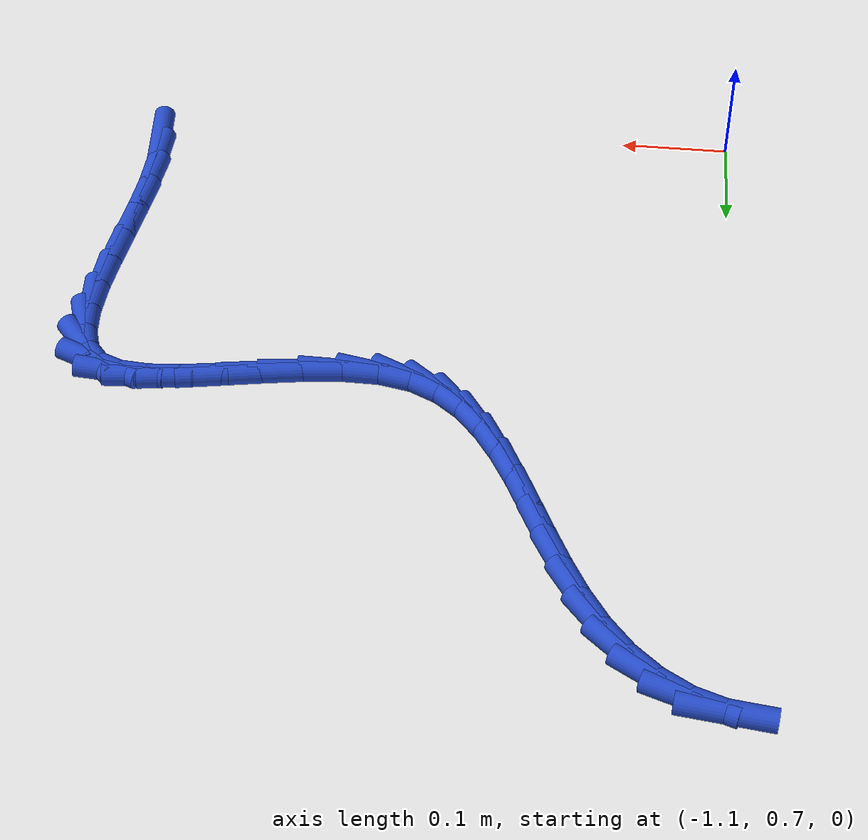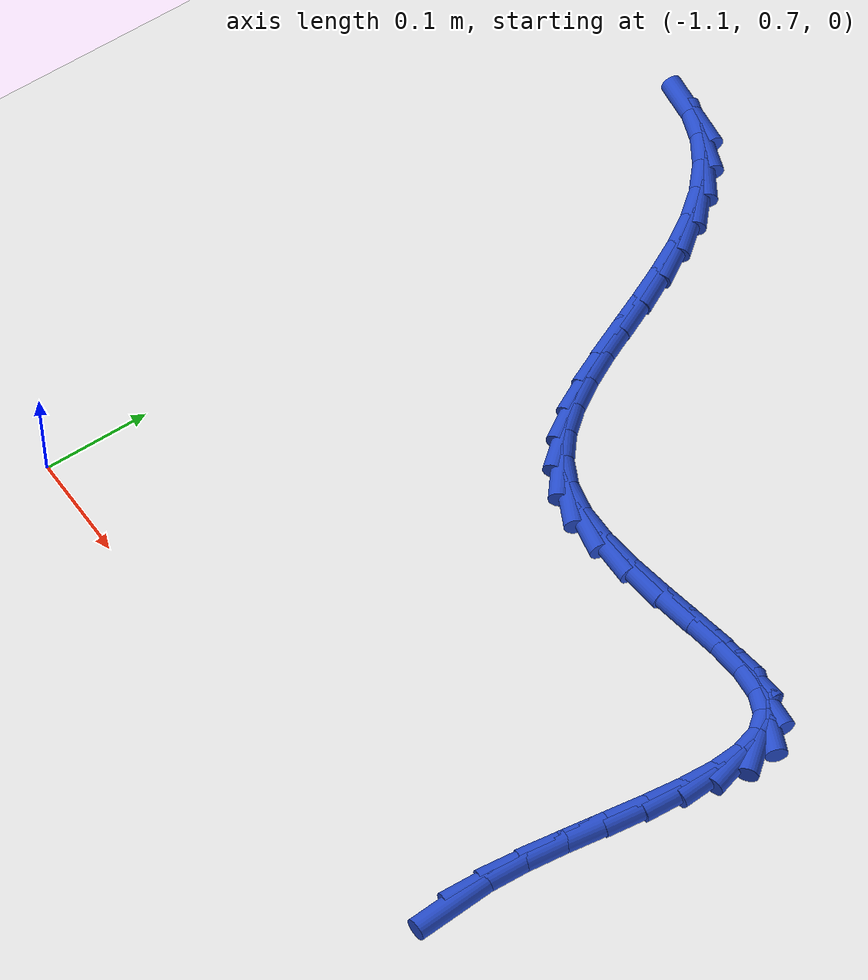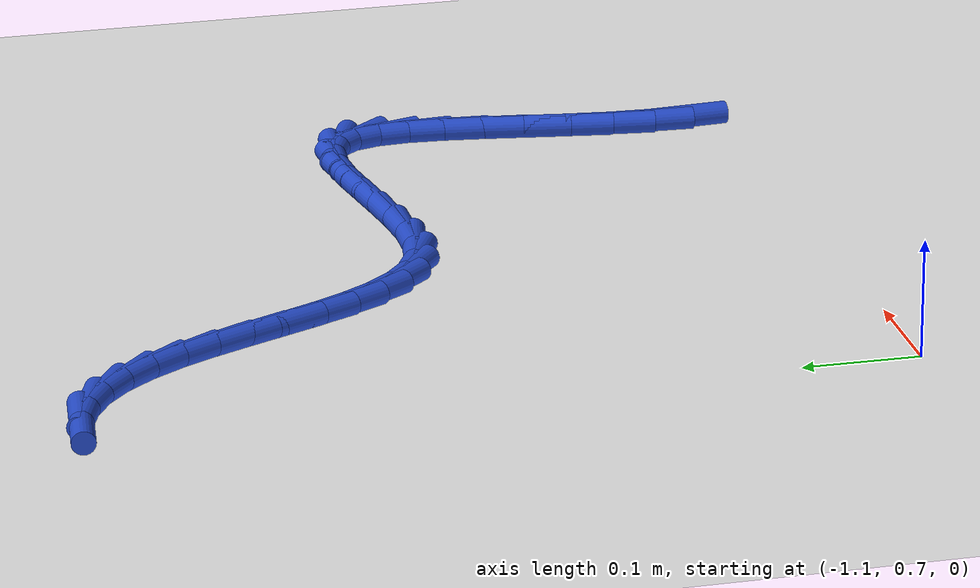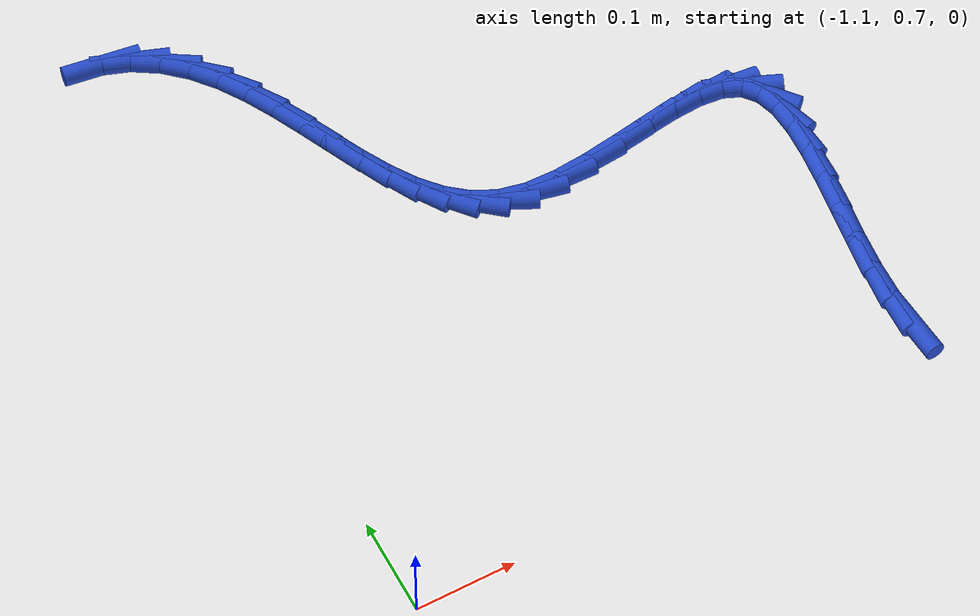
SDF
<sdf version="1.6">
 <world name="default">
  <model name="ground_plane">
   <static>1</static>
   <link name="link">
    <collision name="collision">
     <geometry><plane><normal>0 0 1</normal><size>100 100</size></plane></geometry>
     <surface><friction><ode><mu>100</mu><mu2>50</mu2></ode></friction></surface>
    </collision>
    <visual name="visual">
     <cast_shadows>0</cast_shadows>
     <geometry><plane><normal>0 0 1</normal><size>100 100</size></plane></geometry>
     <material>
      <script><uri>file://media/materials/scripts/gazebo.material</uri><name>Gazebo/WhiteGlow</name></script>
     </material>
    </visual>
   </link>
  </model>
  <model name="line">
   <link name="link_33">
    <pose>-0.5493071312710457 0.7454658477451037 0.01 0 1.57 -1.5068990331410062</pose>
    <collision name="collision">
     <geometry><cylinder><radius>0.01</radius><length>0.08</length></cylinder></geometry>
    </collision>
    <visual name="visual">
     <material>
      <script><name>Gazebo/Blue</name><uri>file://media/materials/scripts/gazebo.material</uri></script>
     </material>
     <geometry><cylinder><radius>0.01</radius><length>0.08</length></cylinder></geometry>
    </visual>
   </link>
   <link name="link_34">
    <pose>-0.5513606806796135 0.7775603816845239 0.01 0 1.57 1.5228987435027548</pose>
    <collision name="collision">
     <geometry><cylinder><radius>0.01</radius><length>0.08</length></cylinder></geometry>
    </collision>
    <visual name="visual">
     <material>
      <script><name>Gazebo/Blue</name><uri>file://media/materials/scripts/gazebo.material</uri></script>
     </material>
     <geometry><cylinder><radius>0.01</radius><length>0.08</length></cylinder></geometry>
    </visual>
   </link>
   <link name="link_35">
    <pose>-0.5496763306960403 0.8126991424391762 0.01 0 1.57 1.4579307255046015</pose>
    <collision name="collision">
     <geometry><cylinder><radius>0.01</radius><length>0.08</length></cylinder></geometry>
    </collision>
    <visual name="visual">
     <material>
      <script><name>Gazebo/Blue</name><uri>file://media/materials/scripts/gazebo.material</uri></script>
     </material>
     <geometry><cylinder><radius>0.01</radius><length>0.08</length></cylinder></geometry>
    </visual>
   </link>
   <link name="link_36">
    <pose>-0.5454860308469653 0.8496678181020901 0.01 0 1.57 1.4264199918031013</pose>
    <collision name="collision">
     <geometry><cylinder><radius>0.01</radius><length>0.08</length></cylinder></geometry>
    </collision>
    <visual name="visual">
     <material>
      <script><name>Gazebo/Blue</name><uri>file://media/materials/scripts/gazebo.material</uri></script>
     </material>
     <geometry><cylinder><radius>0.01</radius><length>0.08</length></cylinder></geometry>
    </visual>
   </link>
   <link name="link_37">
    <pose>-0.5400217306590289 0.8872520967662952 0.01 0 1.57 1.4230035168919142</pose>
    <collision name="collision">
     <geometry><cylinder><radius>0.01</radius><length>0.08</length></cylinder></geometry>
    </collision>
    <visual name="visual">
     <material>
      <script><name>Gazebo/Blue</name><uri>file://media/materials/scripts/gazebo.material</uri></script>
     </material>
     <geometry><cylinder><radius>0.01</radius><length>0.08</length></cylinder></geometry>
    </visual>
   </link>
   <link name="link_38">
    <pose>-0.5345153796588704 0.9242376665248203 0.01 0 1.57 1.4486847227458415</pose>
    <collision name="collision">
     <geometry><cylinder><radius>0.01</radius><length>0.08</length></cylinder></geometry>
    </collision>
    <visual name="visual">
     <material>
      <script><name>Gazebo/Blue</name><uri>file://media/materials/scripts/gazebo.material</uri></script>
     </material>
     <geometry><cylinder><radius>0.01</radius><length>0.08</length></cylinder></geometry>
    </visual>
   </link>
   <link name="link_39">
    <pose>-0.5301989273731297 0.9594102154706959 0.01 0 1.57 1.5119255209368108</pose>
    <collision name="collision">
     <geometry><cylinder><radius>0.01</radius><length>0.08</length></cylinder></geometry>
    </collision>
    <visual name="visual">
     <material>
      <script><name>Gazebo/Blue</name><uri>file://media/materials/scripts/gazebo.material</uri></script>
     </material>
     <geometry><cylinder><radius>0.01</radius><length>0.08</length></cylinder></geometry>
    </visual>
   </link>
   <link name="link_40">
    <pose>-0.5283043233284467 0.9915554316969507 0.01 0 1.57 -1.5078341900095376</pose>
    <collision name="collision">
     <geometry><cylinder><radius>0.01</radius><length>0.08</length></cylinder></geometry>
    </collision>
    <visual name="visual">
     <material>
      <script><name>Gazebo/Blue</name><uri>file://media/materials/scripts/gazebo.material</uri></script>
     </material>
     <geometry><cylinder><radius>0.01</radius><length>0.08</length></cylinder></geometry>
    </visual>
   </link>
   <link name="link_41">
    <pose>-0.5300635170514608 1.0194590032966147 0.01 0 1.57 -1.2829949780270735</pose>
    <collision name="collision">
     <geometry><cylinder><radius>0.01</radius><length>0.08</length></cylinder></geometry>
    </collision>
    <visual name="visual">
     <material>
      <script><name>Gazebo/Blue</name><uri>file://media/materials/scripts/gazebo.material</uri></script>
     </material>
     <geometry><cylinder><radius>0.01</radius><length>0.08</length></cylinder></geometry>
    </visual>
   </link>
   <link name="link_42">
    <pose>-0.5367084580688121 1.041906618362717 0.01 0 1.57 -0.8906405508435817</pose>
    <collision name="collision">
     <geometry><cylinder><radius>0.01</radius><length>0.08</length></cylinder></geometry>
    </collision>
    <visual name="visual">
     <material>
      <script><name>Gazebo/Blue</name><uri>file://media/materials/scripts/gazebo.material</uri></script>
     </material>
     <geometry><cylinder><radius>0.01</radius><length>0.08</length></cylinder></geometry>
    </visual>
   </link>
   <link name="link_43">
    <pose>-0.5494710740412702 1.0576839893649224 0.01 0 1.57 -0.40551260671328465</pose>
    <collision name="collision">
     <geometry><cylinder><radius>0.01</radius><length>0.08</length></cylinder></geometry>
    </collision>
    <visual name="visual">
     <material>
      <script><name>Gazebo/Blue</name><uri>file://media/materials/scripts/gazebo.material</uri></script>
     </material>
     <geometry><cylinder><radius>0.01</radius><length>0.08</length></cylinder></geometry>
    </visual>
   </link>
   <link name="link_44">
    <pose>-0.5691031095274153 1.0661121492754488 0.01 0 1.57 -0.0904721181696937</pose>
    <collision name="collision">
     <geometry><cylinder><radius>0.01</radius><length>0.08</length></cylinder></geometry>
    </collision>
    <visual name="visual">
     <material>
      <script><name>Gazebo/Blue</name><uri>file://media/materials/scripts/gazebo.material</uri></script>
     </material>
     <geometry><cylinder><radius>0.01</radius><length>0.08</length></cylinder></geometry>
    </visual>
   </link>
   <link name="link_45">
    <pose>-0.5946372348585163 1.0684285993368305 0.01 0 1.57 0.07065173461353581</pose>
    <collision name="collision">
     <geometry><cylinder><radius>0.01</radius><length>0.08</length></cylinder></geometry>
    </collision>
    <visual name="visual">
     <material>
      <script><name>Gazebo/Blue</name><uri>file://media/materials/scripts/gazebo.material</uri></script>
     </material>
     <geometry><cylinder><radius>0.01</radius><length>0.08</length></cylinder></geometry>
    </visual>
   </link>
   <link name="link_46">
    <pose>-0.6247215721735363 1.0662995450309274 0.01 0 1.57 0.1464193417690288</pose>
    <collision name="collision">
     <geometry><cylinder><radius>0.01</radius><length>0.08</length></cylinder></geometry>
    </collision>
    <visual name="visual">
     <material>
      <script><name>Gazebo/Blue</name><uri>file://media/materials/scripts/gazebo.material</uri></script>
     </material>
     <geometry><cylinder><radius>0.01</radius><length>0.08</length></cylinder></geometry>
    </visual>
   </link>
   <link name="link_47">
    <pose>-0.6580042436114384 1.061391191839598 0.01 0 1.57 0.16975920438952974</pose>
    <collision name="collision">
     <geometry><cylinder><radius>0.01</radius><length>0.08</length></cylinder></geometry>
    </collision>
    <visual name="visual">
     <material>
      <script><name>Gazebo/Blue</name><uri>file://media/materials/scripts/gazebo.material</uri></script>
     </material>
     <geometry><cylinder><radius>0.01</radius><length>0.08</length></cylinder></geometry>
    </visual>
   </link>
   <link name="link_48">
    <pose>-0.693133371311186 1.055369745244702 0.01 0 1.57 0.15231378318291702</pose>
    <collision name="collision">
     <geometry><cylinder><radius>0.01</radius><length>0.08</length></cylinder></geometry>
    </collision>
    <visual name="visual">
     <material>
      <script><name>Gazebo/Blue</name><uri>file://media/materials/scripts/gazebo.material</uri></script>
     </material>
     <geometry><cylinder><radius>0.01</radius><length>0.08</length></cylinder></geometry>
    </visual>
   </link>
   <link name="link_49">
    <pose>-0.728757077411742 1.0499014107280986 0.01 0 1.57 0.09318213129982199</pose>
    <collision name="collision">
     <geometry><cylinder><radius>0.01</radius><length>0.08</length></cylinder></geometry>
    </collision>
    <visual name="visual">
     <material>
      <script><name>Gazebo/Blue</name><uri>file://media/materials/scripts/gazebo.material</uri></script>
     </material>
     <geometry><cylinder><radius>0.01</radius><length>0.08</length></cylinder></geometry>
    </visual>
   </link>
   <link name="link_50">
    <pose>-0.7635234840520695 1.0466523937716472 0.01 0 1.57 -0.019547886074322254</pose>
    <collision name="collision">
     <geometry><cylinder><radius>0.01</radius><length>0.08</length></cylinder></geometry>
    </collision>
    <visual name="visual">
     <material>
      <script><name>Gazebo/Blue</name><uri>file://media/materials/scripts/gazebo.material</uri></script>
     </material>
     <geometry><cylinder><radius>0.01</radius><length>0.08</length></cylinder></geometry>
    </visual>
   </link>
   <link name="link_51">
    <pose>-0.7960807133711314 1.0472888998572072 0.01 0 1.57 -0.2095122326451276</pose>
    <collision name="collision">
     <geometry><cylinder><radius>0.01</radius><length>0.08</length></cylinder></geometry>
    </collision>
    <visual name="visual">
     <material>
      <script><name>Gazebo/Blue</name><uri>file://media/materials/scripts/gazebo.material</uri></script>
     </material>
     <geometry><cylinder><radius>0.01</radius><length>0.08</length></cylinder></geometry>
    </visual>
   </link>
   <link name="link_52">
    <pose>-0.8250921631158185 1.0534576790010977 0.01 0 1.57 -0.4603297266119786</pose>
    <collision name="collision">
     <geometry><cylinder><radius>0.01</radius><length>0.08</length></cylinder></geometry>
    </collision>
    <visual name="visual">
     <material>
      <script><name>Gazebo/Blue</name><uri>file://media/materials/scripts/gazebo.material</uri></script>
     </material>
     <geometry><cylinder><radius>0.01</radius><length>0.08</length></cylinder></geometry>
    </visual>
   </link>
   <link name="link_53">
    <pose>-0.8500029112896328 1.0658099101517697 0.01 0 1.57 -0.6921397278806337</pose>
    <collision name="collision">
     <geometry><cylinder><radius>0.01</radius><length>0.08</length></cylinder></geometry>
    </collision>
    <visual name="visual">
     <material>
      <script><name>Gazebo/Blue</name><uri>file://media/materials/scripts/gazebo.material</uri></script>
     </material>
     <geometry><cylinder><radius>0.01</radius><length>0.08</length></cylinder></geometry>
    </visual>
   </link>
   <link name="link_54">
    <pose>-0.8713978719821538 1.0835450433444678 0.01 0 1.57 -0.8746788705650897</pose>
    <collision name="collision">
     <geometry><cylinder><radius>0.01</radius><length>0.08</length></cylinder></geometry>
    </collision>
    <visual name="visual">
     <material>
      <script><name>Gazebo/Blue</name><uri>file://media/materials/scripts/gazebo.material</uri></script>
     </material>
     <geometry><cylinder><radius>0.01</radius><length>0.08</length></cylinder></geometry>
    </visual>
   </link>
   <link name="link_55">
    <pose>-0.88995207624401 1.105747752990534 0.01 0 1.57 -1.0040958911483306</pose>
    <collision name="collision">
     <geometry><cylinder><radius>0.01</radius><length>0.08</length></cylinder></geometry>
    </collision>
    <visual name="visual">
     <material>
      <script><name>Gazebo/Blue</name><uri>file://media/materials/scripts/gazebo.material</uri></script>
     </material>
     <geometry><cylinder><radius>0.01</radius><length>0.08</length></cylinder></geometry>
    </visual>
   </link>
   <link name="link_56">
    <pose>-0.9063405551258295 1.131502713501311 0.01 0 1.57 -1.0875690097782078</pose>
    <collision name="collision">
     <geometry><cylinder><radius>0.01</radius><length>0.08</length></cylinder></geometry>
    </collision>
    <visual name="visual">
     <material>
      <script><name>Gazebo/Blue</name><uri>file://media/materials/scripts/gazebo.material</uri></script>
     </material>
     <geometry><cylinder><radius>0.01</radius><length>0.08</length></cylinder></geometry>
    </visual>
   </link>
   <link name="link_57">
    <pose>-0.9212383396782402 1.1598945992881395 0.01 0 1.57 -1.1333742571657481</pose>
    <collision name="collision">
     <geometry><cylinder><radius>0.01</radius><length>0.08</length></cylinder></geometry>
    </collision>
    <visual name="visual">
     <material>
      <script><name>Gazebo/Blue</name><uri>file://media/materials/scripts/gazebo.material</uri></script>
     </material>
     <geometry><cylinder><radius>0.01</radius><length>0.08</length></cylinder></geometry>
    </visual>
   </link>
   <link name="link_58">
    <pose>-0.935320460951871 1.190008084762364 0.01 0 1.57 -1.1472004085185488</pose>
    <collision name="collision">
     <geometry><cylinder><radius>0.01</radius><length>0.08</length></cylinder></geometry>
    </collision>
    <visual name="visual">
     <material>
      <script><name>Gazebo/Blue</name><uri>file://media/materials/scripts/gazebo.material</uri></script>
     </material>
     <geometry><cylinder><radius>0.01</radius><length>0.08</length></cylinder></geometry>
    </visual>
   </link>
   <link name="link_59">
    <pose>-0.9492619499973498 1.2209278443353249 0.01 0 1.57 -1.131572220488044</pose>
    <collision name="collision">
     <geometry><cylinder><radius>0.01</radius><length>0.08</length></cylinder></geometry>
    </collision>
    <visual name="visual">
     <material>
      <script><name>Gazebo/Blue</name><uri>file://media/materials/scripts/gazebo.material</uri></script>
     </material>
     <geometry><cylinder><radius>0.01</radius><length>0.08</length></cylinder></geometry>
    </visual>
   </link>
   <link name="link_60">
    <pose>-0.9637378378653049 1.2517385524183648 0.01 0 1.57 -1.0861001790822522</pose>
    <collision name="collision">
     <geometry><cylinder><radius>0.01</radius><length>0.08</length></cylinder></geometry>
    </collision>
    <visual name="visual">
     <material>
      <script><name>Gazebo/Blue</name><uri>file://media/materials/scripts/gazebo.material</uri></script>
     </material>
     <geometry><cylinder><radius>0.01</radius><length>0.08</length></cylinder></geometry>
    </visual>
   </link>
   <link name="link_61">
    <pose>-0.9794231556063638 1.2815248834228259 0.01 0 1.57 -1.007931119352681</pose>
    <collision name="collision">
     <geometry><cylinder><radius>0.01</radius><length>0.08</length></cylinder></geometry>
    </collision>
    <visual name="visual">
     <material>
      <script><name>Gazebo/Blue</name><uri>file://media/materials/scripts/gazebo.material</uri></script>
     </material>
     <geometry><cylinder><radius>0.01</radius><length>0.08</length></cylinder></geometry>
    </visual>
   </link>
   <link name="link_62">
    <pose>-0.9969929342711554 1.3093715117600508 0.01 0 1.57 -0.8927462223182837</pose>
    <collision name="collision">
     <geometry><cylinder><radius>0.01</radius><length>0.08</length></cylinder></geometry>
    </collision>
    <visual name="visual">
     <material>
      <script><name>Gazebo/Blue</name><uri>file://media/materials/scripts/gazebo.material</uri></script>
     </material>
     <geometry><cylinder><radius>0.01</radius><length>0.08</length></cylinder></geometry>
    </visual>
   </link>
   <link name="link_63">
    <pose>-1.0171222049103081 1.3343631118413812 0.01 0 1.57 -0.7378774572413543</pose>
    <collision name="collision">
     <geometry><cylinder><radius>0.01</radius><length>0.08</length></cylinder></geometry>
    </collision>
    <visual name="visual">
     <material>
      <script><name>Gazebo/Blue</name><uri>file://media/materials/scripts/gazebo.material</uri></script>
     </material>
     <geometry><cylinder><radius>0.01</radius><length>0.08</length></cylinder></geometry>
    </visual>
   </link>
   <link name="link_64">
    <pose>-1.0404522595737244 1.3555749114047513 0.01 0 1.57 -0.5570568199839954</pose>
    <collision name="collision">
     <geometry><cylinder><radius>0.01</radius><length>0.08</length></cylinder></geometry>
    </collision>
    <visual name="visual">
     <material>
      <script><name>Gazebo/Blue</name><uri>file://media/materials/scripts/gazebo.material</uri></script>
     </material>
     <geometry><cylinder><radius>0.01</radius><length>0.08</length></cylinder></geometry>
    </visual>
   </link>
   <link name="link_65">
    <pose>-1.066407798631495 1.3717415014168965 0.01 0 1.57 -0.3492907592304946</pose>
    <collision name="collision">
     <geometry><cylinder><radius>0.01</radius><length>0.08</length></cylinder></geometry>
    </collision>
    <visual name="visual">
     <material>
      <script><name>Gazebo/Blue</name><uri>file://media/materials/scripts/gazebo.material</uri></script>
     </material>
     <geometry><cylinder><radius>0.01</radius><length>0.08</length></cylinder></geometry>
    </visual>
   </link>
   <link name="link_66">
    <pose>-1.0931664770123652 1.3814876799423863 0.01 0 1.57 -0.13106832094035797</pose>
    <collision name="collision">
     <geometry><cylinder><radius>0.01</radius><length>0.08</length></cylinder></geometry>
    </collision>
    <visual name="visual">
     <material>
      <script><name>Gazebo/Blue</name><uri>file://media/materials/scripts/gazebo.material</uri></script>
     </material>
     <geometry><cylinder><radius>0.01</radius><length>0.08</length></cylinder></geometry>
    </visual>
   </link>
  </model>
 </world>
</sdf>
